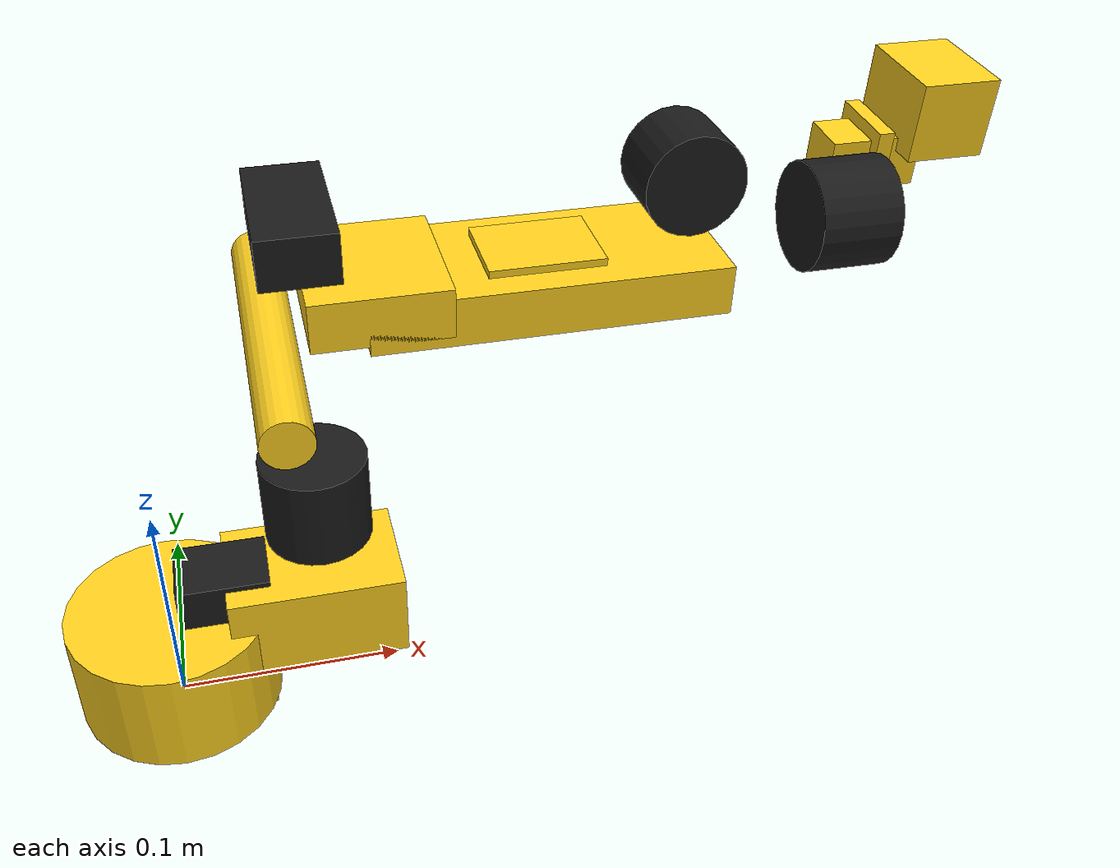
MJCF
<mujoco model="so101">
  <option integrator="implicitfast" timestep="0.005" cone="elliptic" iterations="10" ls_iterations="20" impratio="10"/>

  <compiler angle="radian" autolimits="true"/>

  <visual>
    <scale contactwidth="0.1" contactheight="0.05" forcewidth="0.02" framelength="0.75" framewidth="0.025" camera="0.2"/>
  </visual>

  <default>
    <mesh maxhullvert="128"/>

    <default class="so101">
      <joint damping="1" frictionloss="0.1" armature="0.005"/>
      <position kp="50"/>
      <default class="visual">
        <geom type="cylinder" contype="0" conaffinity="0" group="2"/>
      </default>
      <default class="collision">
        <!-- Same-arm geoms share contype=1/conaffinity=0, so they do not
             collide with one another. They still collide with scene/object
             geoms whose conaffinity includes bit 1. -->
        <geom group="3" condim="3" contype="1" conaffinity="0"/>
      </default>
      <default class="collision_gripper">
        <geom group="3" condim="6" friction="1 5e-3 5e-4" solref="0.01 1" priority="1" rgba="1.0 0 0 1.0" mass="0" contype="1" conaffinity="0"/>
      </default>
    </default>

    <default class="sts3215">
      <geom contype="0" conaffinity="0"/>
      <joint damping="0.60" frictionloss="0.052" armature="0.028"/>
      <!-- A moderate servo gain remains stable when the gripper closes a
           contact chain through free task objects and the sliding drawer. -->
      <position kp="500.0" kv="40.0" forcerange="-500.0 500.0"/>
    </default>
  </default>

  <asset>
    <material name="yellow" rgba="1 0.82 0.12 1"/>
    <material name="dark_gray" rgba="0.1 0.1 0.1 1"/>
    <material name="gray" rgba="0.5 0.5 0.5 1"/>
    <material name="light_gray" rgba="0.7 0.7 0.7 1"/>
  </asset>

  <worldbody>
    <!-- Link base -->
    <body name="base" pos="0 0 0" quat="1 0 0 0" childclass="so101">
      <inertial pos="0 0 0.025" mass="0.147" diaginertia="0.0001 0.0001 0.0001"/>

      <!-- Base cylinder -->
      <geom class="visual" pos="0 0 0.025" size="0.045 0.025" material="yellow"/>
      <geom class="collision" pos="0 0 0.025" size="0.045 0.025"/>

      <!-- Motor housing -->
      <geom class="visual" pos="0.025 0 0.05" size="0.02 0.015 0.02" material="dark_gray" type="box"/>

      <!-- Frame baseframe -->
      <site group="3" name="baseframe" pos="0 0 0" quat="1 0 0 0"/>

      <!-- Link shoulder -->
      <body name="shoulder" pos="0.0388 0 0.0624" quat="0 0 -1 0">
        <joint axis="0 0 1" name="shoulder_pan" type="hinge" range="-1.91986 1.91986" class="sts3215"/>
        <inertial pos="0 0 0.03" mass="0.1" diaginertia="0.00008 0.00008 0.00002"/>

        <!-- Shoulder motor -->
        <geom class="visual" pos="-0.03 0 -0.04" size="0.023 0.02" material="dark_gray" type="cylinder"/>
        <geom class="collision" pos="-0.03 0 -0.04" size="0.023 0.02" type="cylinder"/>

        <!-- Motor holder -->
        <geom class="visual" pos="-0.025 0 0.015" size="0.038 0.025 0.02" material="yellow" type="box"/>
        <geom class="collision" pos="-0.025 0 0.015" size="0.038 0.025 0.02" type="box"/>

        <!-- Rotation pitch -->
        <geom class="visual" pos="0.012 0 0.046" size="0.015 0.015 0.02" material="yellow" type="box"/>

        <!-- Link upper_arm -->
        <body name="upper_arm" pos="-0.0304 -0.0183 -0.0542" quat="1 -1 -1 -1">
          <joint axis="0 0 1" name="shoulder_lift" type="hinge" range="-1.74533 1.74533" class="sts3215"/>
          <inertial pos="0 0 0.07" mass="0.103" diaginertia="0.00004 0.00015 0.00014"/>

          <!-- Upper arm motor -->
          <geom class="visual" pos="-0.112 0 0.018" size="0.01 0.015 0.03" material="dark_gray" type="box"/>
          <geom class="collision" pos="-0.06 0 0.02" size="0.01 0.07 0.03" type="box"/>

          <!-- Upper arm link -->
          <geom class="visual" pos="-0.065 0.012 0.018" size="0.01 0.07" material="yellow" type="cylinder"/>
          <geom class="collision" pos="-0.12 -0.014 0.018" size="0.01 0.02 0.015" type="box"/>

          <!-- Link lower_arm -->
          <body name="lower_arm" pos="-0.1126 -0.028 0" quat="1 0 0 1">
            <joint axis="0 0 1" name="elbow_flex" type="hinge" range="-1.69 1.69" class="sts3215"/>
            <inertial pos="0 0 0.07" mass="0.104" diaginertia="0.00003 0.00016 0.00014"/>

            <!-- Lower arm motor -->
            <geom class="visual" pos="-0.065 -0.032 0.018" size="0.07 0.01 0.03" material="yellow" type="box"/>
            <geom class="collision" pos="-0.05 0 0.018" size="0.07 0.01 0.03" type="box"/>

            <!-- Wrist motor holder -->
            <geom class="visual" pos="-0.065 -0.032 0.018" size="0.023 0.013 0.018" material="yellow" type="box"/>
            <geom class="collision" pos="-0.125 0.005 0.018" size="0.023 0.013 0.018" type="box"/>

            <!-- Wrist motor -->
            <geom class="visual" pos="-0.122 0.005 0.018" size="0.02 0.015" material="dark_gray" type="cylinder"/>
            <geom class="collision" pos="0 -0.042 0.025" size="0.029 0.015 0.018" type="box"/>

            <!-- Wrist roll/pitch -->
            <geom class="visual" pos="0 -0.028 0.018" size="0.027 0.01 0.03" material="yellow" type="box"/>
            <geom class="collision" pos="0 -0.02 0.019" size="0.027 0.01 0.03" type="box"/>

            <!-- Link wrist (matching the SO-101 kinematic hierarchy) -->
            <body name="wrist" pos="-0.1349 0.0052 0" quat="1 0 0 -1">
              <joint axis="0 0 1" name="wrist_flex" type="hinge" range="-1.65806 1.65806" class="sts3215"/>
              <inertial pos="0 0 0.02" mass="0.079" diaginertia="0.00004 0.00003 0.00002"/>

              <!-- Link gripper -->
              <body name="gripper" pos="0 -0.061 0.018" quat="0.017 -0.017 0.707 0.707">
                <joint axis="0 0 1" name="wrist_roll" type="hinge" range="-2.74385 2.74385" class="sts3215"/>
                <inertial pos="0 0 -0.025" mass="0.087" diaginertia="0.00003 0.00004 0.00003"/>

              <!-- Wrist motor -->
              <geom class="visual" pos="0 -0.042 0.03" size="0.02 0.015" material="dark_gray" type="cylinder"/>
              <geom class="collision" pos="0 -0.042 0.025" size="0.029 0.015 0.018" type="box"/>

              <!-- Fixed jaw -->
              <geom class="visual" pos="0 0 0" size="0.01 0.01 0.018" material="yellow" type="box" quat="0 1 0 0"/>
              <geom class="collision" pos="0 0 0" size="0.01 0.01 0.018" type="box" quat="0 1 0 0"/>

              <!-- Fixed jaw collision boxes -->
              <geom name="fixed_jaw_box1" class="collision_gripper" type="box" size="0.0325 0.015 0.015" pos="-0.0025 0 -0.022"/>
              <geom name="fixed_jaw_box2" class="collision_gripper" type="box" size="0.01 0.015 0.005" pos="-0.024 0 -0.04"/>
              <geom name="fixed_jaw_sph_tip1" class="collision_gripper" type="sphere" size="0.00075" pos="-0.0081 0 -0.101"/>
              <geom name="fixed_jaw_sph_tip2" class="collision_gripper" type="sphere" size="0.00075" pos="-0.0081 0.0035 -0.0975"/>
              <geom name="fixed_jaw_sph_tip3" class="collision_gripper" type="sphere" size="0.00075" pos="-0.0081 -0.0035 -0.0975"/>
              <geom name="fixed_jaw_box3" class="collision_gripper" type="capsule" size="0.0011 0.002" pos="-0.009 0 -0.103" euler="1.57 0 0"/>
              <geom name="fixed_jaw_box4" class="collision_gripper" type="box" size="0.001 0.004 0.004" pos="-0.009 0 -0.0982"/>
              <geom name="fixed_jaw_box5" class="collision_gripper" type="box" size="0.001 0.005 0.006" pos="-0.0108 0 -0.0905"/>
              <geom name="fixed_jaw_box6" class="collision_gripper" type="box" size="0.001 0.009 0.008" pos="-0.0125 0 -0.0727"/>
              <geom name="fixed_jaw_box7" class="collision_gripper" type="box" size="0.001 0.01 0.008" pos="-0.0143 0 -0.053"/>

              <!-- Frame gripperframe -->
              <site group="3" name="gripperframe" pos="0.012 0 -0.098" quat="1 0 1 0"/>

              <!-- Camera mount -->
              <body name="camera_mount">
                <camera name="wrist_cam" mode="fixed" pos="0 0.055 -0.045" euler="-0.57 0 0" resolution="1920 1080" sensorsize="0.00576 0.00324" focal="0.0036 0.0036"/>
                <geom class="visual" pos="0 0 0" size="0.015 0.015 0.003" material="yellow" type="box" quat="0 1 0 0"/>
                <geom name="camera_box1" class="collision_gripper" type="box" size="0.015 0.015 0.003" pos="-0.0025 0.03 -0.03"/>
                <geom name="camera_box2" class="collision_gripper" type="box" size="0.021 0.021 0.003" pos="-0.001 0.06 -0.04" euler="-0.55 0 0"/>
              </body>

              <!-- Moving jaw -->
              <body name="moving_jaw" pos="0.02 0.019 -0.023" quat="1 1 0 0">
                <joint axis="0 0 1" name="gripper" type="hinge" range="-0.1745 1.74533" class="sts3215"/>
                <inertial pos="0 0 0.02" mass="0.012" diaginertia="0.000006 0.000002 0.000005"/>

                <geom class="visual" pos="0 0 0.019" size="0.015 0.015 0.02" material="yellow" type="box" quat="1 0 0 0"/>

                <!-- Moving jaw collision -->
                <geom name="moving_jaw_box1" class="collision_gripper" type="box" size="0.01 0.01 0.015" pos="0 -0.013 0.019"/>
                <geom name="moving_jaw_sph_tip1" class="collision_gripper" type="sphere" size="0.00075" pos="-0.012 -0.078 0.019"/>
                <geom name="moving_jaw_sph_tip2" class="collision_gripper" type="sphere" size="0.00075" pos="-0.012 -0.0745 0.0225"/>
                <geom name="moving_jaw_sph_tip3" class="collision_gripper" type="sphere" size="0.00075" pos="-0.012 -0.0745 0.0155"/>
                <geom name="moving_jaw_box2" class="collision_gripper" type="box" size="0.001 0.004 0.004" pos="-0.011 -0.076 0.01875"/>
                <geom name="moving_jaw_box3" class="collision_gripper" type="box" size="0.001 0.005 0.006" pos="-0.009 -0.067 0.01875"/>

              </body>
            </body>
            </body>
          </body>
        </body>
      </body>
    </body>
  </worldbody>

  <actuator>
    <position class="sts3215" name="shoulder_pan" joint="shoulder_pan" ctrlrange="-1.91986 1.91986"/>
    <position class="sts3215" name="shoulder_lift" joint="shoulder_lift" ctrlrange="-1.74533 1.74533"/>
    <position class="sts3215" name="elbow_flex" joint="elbow_flex" ctrlrange="-1.69 1.69"/>
    <position class="sts3215" name="wrist_flex" joint="wrist_flex" ctrlrange="-1.65806 1.65806"/>
    <position class="sts3215" name="wrist_roll" joint="wrist_roll" ctrlrange="-2.74385 2.84121"/>
    <position class="sts3215" name="gripper" joint="gripper" ctrlrange="-0.17453 1.74533" kp="500" kv="2"/>
  </actuator>
</mujoco>
